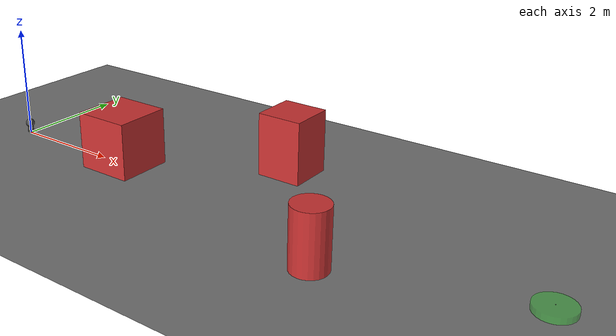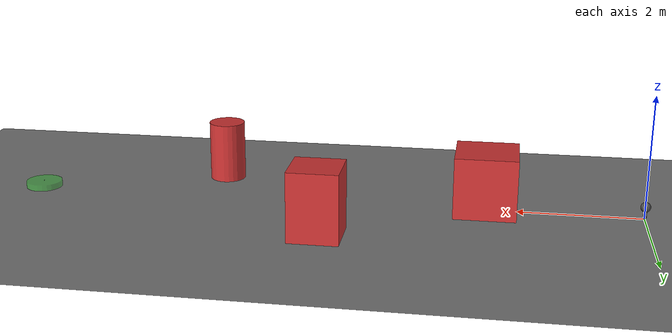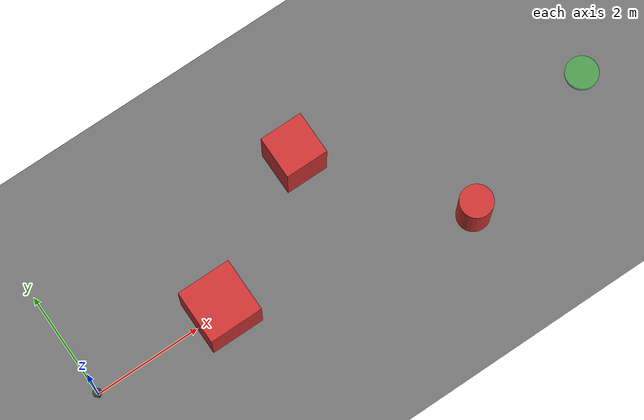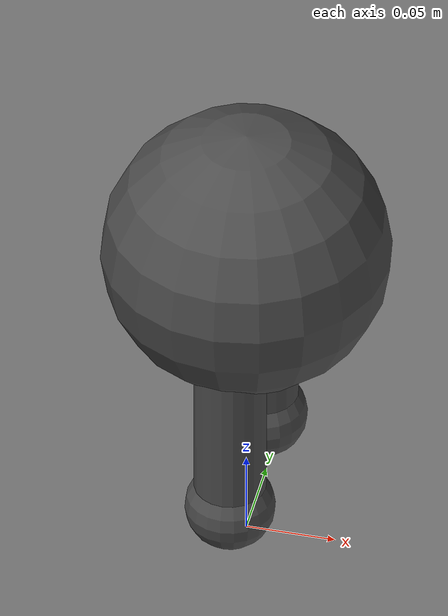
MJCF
<!--
  Hugging Face Reachy Mini Robot Obstacle Navigation Scene for MuJoCo.
  Robot type: mini
  Velocity limits: vx [0, 0.5], wz [-0.3, 0.3]
-->
<mujoco model="hugging-face-reachy-mini_obstacle_navigation">
  <compiler angle="radian" meshdir="." autolimits="true"/>
  <option timestep="0.001" gravity="0 0 -9.81" integrator="implicitfast">
    <flag sensornoise="disable"/>
  </option>
  <default>
    <joint armature="0.01" damping="0.1"/>
    <geom condim="4" friction="1.0 0.005 0.0001"/>
    <motor ctrllimited="true"/>
  </default>
  <asset>
    <texture name="grid" type="2d" builtin="checker" rgb1="0.4 0.4 0.4" rgb2="0.5 0.5 0.5" width="512" height="512"/>
    <material name="grid_mat" texture="grid" texrepeat="10 10" reflectance="0.1"/>
    <material name="obstacle_mat" rgba="0.8 0.2 0.2 1"/>
    <material name="goal_mat" rgba="0.2 0.8 0.2 0.5"/>
    <material name="robot_mat" rgba="0.3 0.3 0.3 1"/>
  </asset>
  <worldbody>
    <geom name="ground" type="plane" size="20 20 0.1" material="grid_mat"/>
    <light name="top_light" pos="0 0 10" dir="0 0 -1" diffuse="0.8 0.8 0.8"/>
    <light name="side_light" pos="5 5 5" dir="-1 -1 -1" diffuse="0.4 0.4 0.4"/>
    <body name="torso" pos="0 0 0.20">
      <inertial mass="3.0" pos="0 0 0" diaginertia="0.05 0.05 0.05"/>
      <geom name="torso_geom" type="sphere" size="0.08" material="robot_mat"/>
      <body name="left_leg" pos="0 0.04 -0.05">
        <inertial mass="0.3" pos="0 0 -0.06" diaginertia="0.005 0.005 0.005"/>
        <joint name="left_hip" type="hinge" axis="1 0 0" range="-1.0 1.0"/>
        <geom name="left_leg_geom" type="capsule" size="0.02" fromto="0 0 0 0 0 -0.1" material="robot_mat"/>
        <body name="left_foot" pos="0 0 -0.1">
          <inertial mass="0.1" pos="0 0 0" diaginertia="0.001 0.001 0.001"/>
          <geom name="left_foot_geom" type="sphere" size="0.025" material="robot_mat"/>
          <site name="left_foot_site" pos="0 0 0"/>
        </body>
      </body>
      <body name="right_leg" pos="0 -0.04 -0.05">
        <inertial mass="0.3" pos="0 0 -0.06" diaginertia="0.005 0.005 0.005"/>
        <joint name="right_hip" type="hinge" axis="1 0 0" range="-1.0 1.0"/>
        <geom name="right_leg_geom" type="capsule" size="0.02" fromto="0 0 0 0 0 -0.1" material="robot_mat"/>
        <body name="right_foot" pos="0 0 -0.1">
          <inertial mass="0.1" pos="0 0 0" diaginertia="0.001 0.001 0.001"/>
          <geom name="right_foot_geom" type="sphere" size="0.025" material="robot_mat"/>
          <site name="right_foot_site" pos="0 0 0"/>
        </body>
      </body>
      <freejoint name="root"/>
    </body>
    <body name="obstacle_1" pos="2.5 0 0.5" mocap="true">
      <geom name="obs1_geom" type="box" size="0.5 0.5 0.5" material="obstacle_mat" contype="1" conaffinity="1"/>
    </body>
    <body name="obstacle_2" pos="5.0 1.5 0.5" mocap="true">
      <geom name="obs2_geom" type="box" size="0.4 0.4 0.6" material="obstacle_mat" contype="1" conaffinity="1"/>
    </body>
    <body name="obstacle_3" pos="7.0 -1.0 0.5" mocap="true">
      <geom name="obs3_geom" type="cylinder" size="0.3 0.5" material="obstacle_mat" contype="1" conaffinity="1"/>
    </body>
    <body name="goal" pos="10.0 0 0.05">
      <geom name="goal_geom" type="cylinder" size="0.3 0.05" material="goal_mat" contype="0" conaffinity="0"/>
      <site name="goal_site" pos="0 0 0.05"/>
    </body>
  </worldbody>
  <sensor>
    <framepos name="torso_pos" objtype="body" objname="torso"/>
    <framevel name="torso_vel" objtype="body" objname="torso"/>
    <touch name="left_foot_touch" site="left_foot_site"/>
    <touch name="right_foot_touch" site="right_foot_site"/>
    <framepos name="goal_pos" objtype="site" objname="goal_site"/>
  </sensor>
  <actuator>
    <motor name="root_x" joint="root" gear="1 0 0 0 0 0" ctrlrange="-50 50"/>
    <motor name="root_y" joint="root" gear="0 1 0 0 0 0" ctrlrange="-50 50"/>
    <motor name="root_yaw" joint="root" gear="0 0 0 0 0 1" ctrlrange="-25 25"/>
    <position name="left_hip_act" joint="left_hip" kp="50" ctrlrange="-1.0 1.0"/>
    <position name="right_hip_act" joint="right_hip" kp="50" ctrlrange="-1.0 1.0"/>
  </actuator>
</mujoco>
